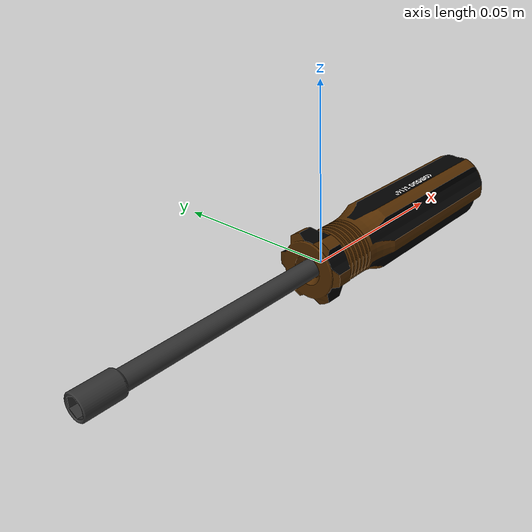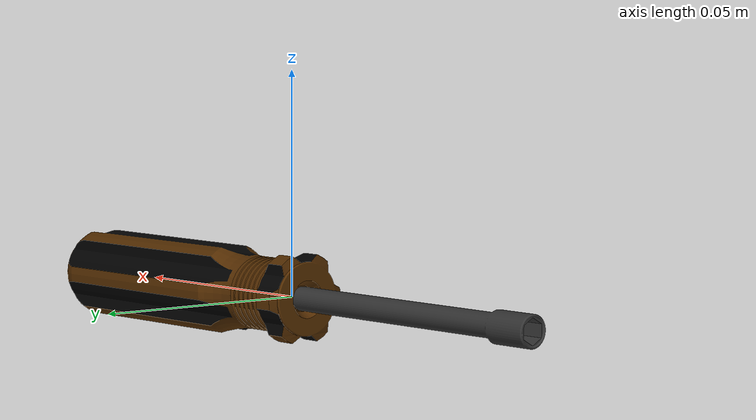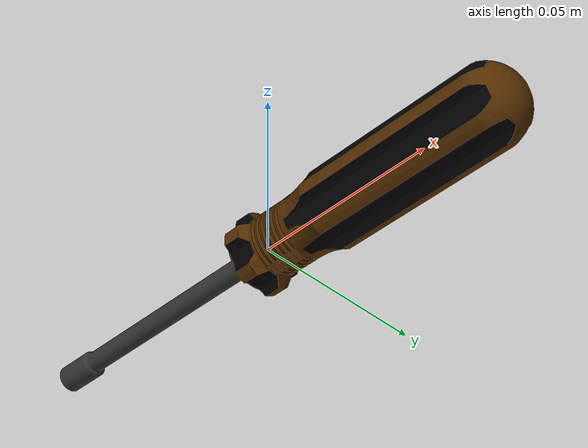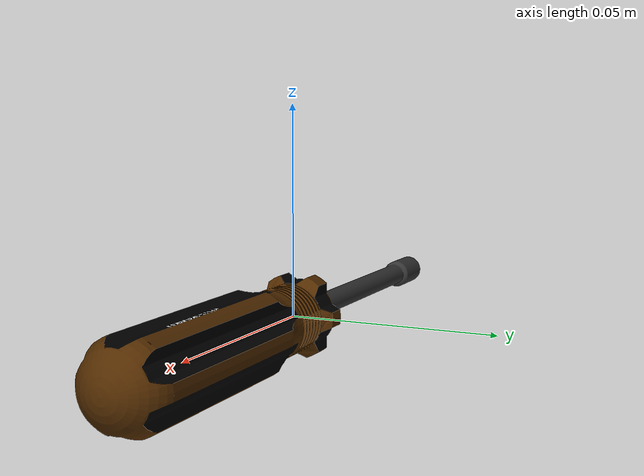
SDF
<?xml version='1.0'?>
<sdf version='1.6'>
  <model name='jsk_screw_driver2'>
    <link name='link_0'>
      <inertial>
        <mass>0.5</mass>
        <pose> 0.02 0 0 0 0 0</pose>
        <inertia>
          <ixx>6.0e-5</ixx>
          <iyy>2.0e-3</iyy>
          <izz>2.0e-3</izz>
          <ixy>0</ixy>
          <ixz>0</ixz>
          <iyz>0</iyz>
        </inertia>
      </inertial>
      <visual name='visual'>
        <pose frame=''>0.078 0 0 0 0 1.57079632679490</pose>
        <geometry>
          <mesh>
            <uri>model://jsk_screw_driver2/meshes/Allen_Driver.dae</uri>
            <scale>0.1 0.1 0.1</scale>
          </mesh>
        </geometry>
      </visual>

      <collision name='simple_0'>
        <laser_retro>0</laser_retro>
        <max_contacts>10</max_contacts>
        <pose> 0.035 0 0 0 1.57079632679490 0</pose>
        <geometry>
          <cylinder>
            <radius>0.01</radius>
            <length>0.08 </length>
          </cylinder>
        </geometry>
      </collision>
      <collision name='simple_1'>
        <laser_retro>0</laser_retro>
        <max_contacts>10</max_contacts>
        <pose> -0.015 0 0 0 1.57079632679490 0</pose>
        <geometry>
          <cylinder>
            <radius>0.003</radius>
            <length>0.10 </length>
          </cylinder>
        </geometry>
      </collision>
    </link>
  </model>
</sdf>
